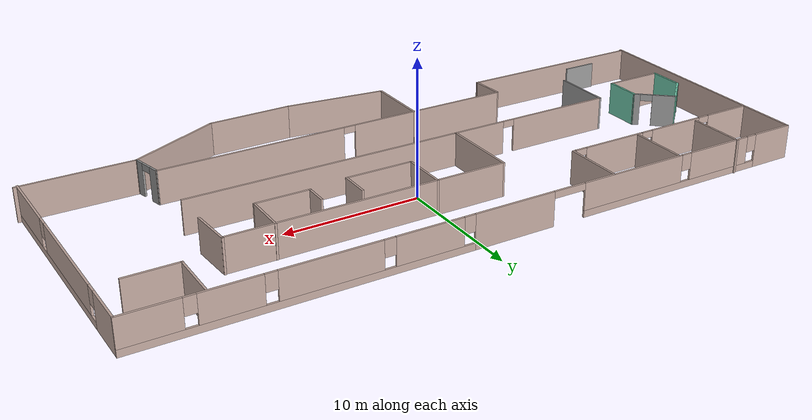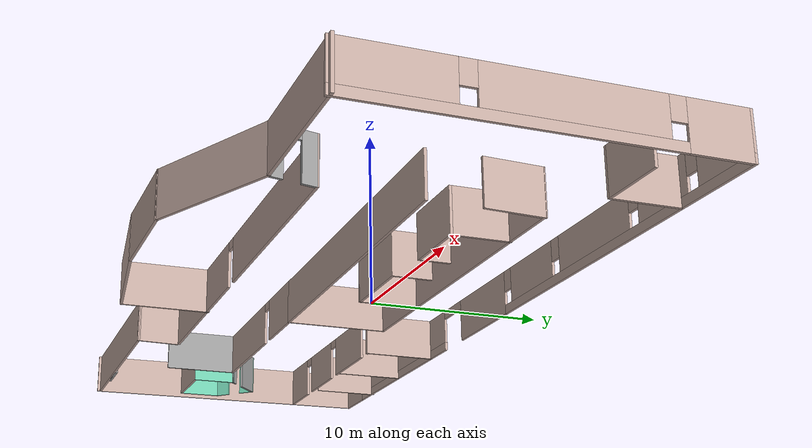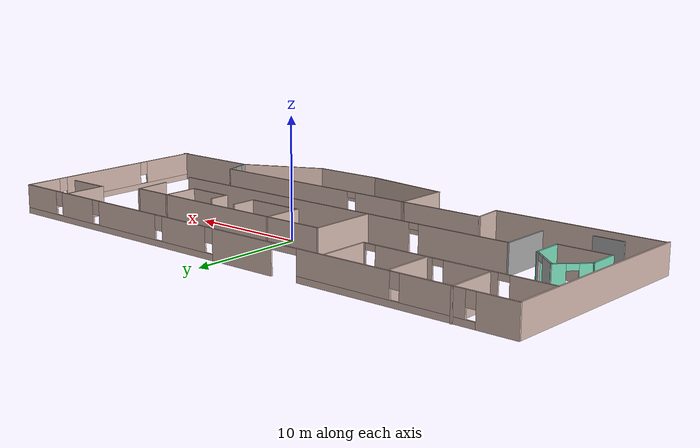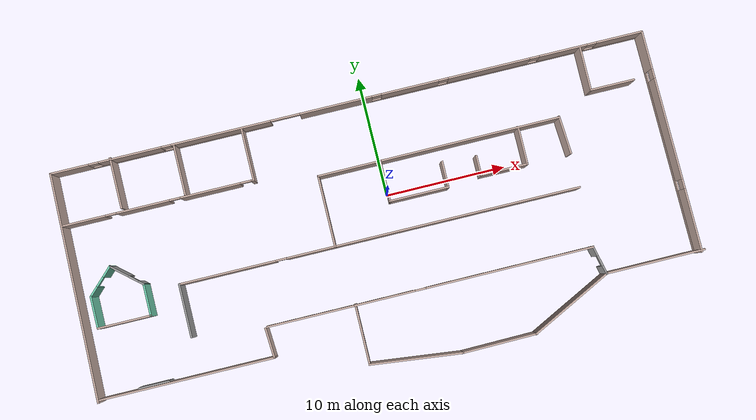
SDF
<?xml version='1.0'?>
<sdf version='1.6'>
  <model name='officesim'>
    <pose frame=''>-1.31506 -2.93451 0 0 -0 0</pose>
    <link name='Door_8'>
      <collision name='Door_8_Collision'>
        <geometry>
          <box>
            <size>2.61208 0.2 2</size>
          </box>
        </geometry>
        <pose frame=''>0 0 1 0 -0 0</pose>
      </collision>
      <visual name='Door_8_Visual'>
        <pose frame=''>0 0 1 0 -0 0</pose>
        <geometry>
          <box>
            <size>2.61208 0.2 2</size>
          </box>
        </geometry>
        <material>
          <script>
            <uri>file://media/materials/scripts/gazebo.material</uri>
            <name>Gazebo/Grey</name>
          </script>
        </material>
      </visual>
      <pose frame=''>-20.5074 -7.65643 0 0 -0 0</pose>
    </link>
    <link name='Wall_0'>
      <pose frame=''>-0.078667 10.8725 0 0 -0 0</pose>
      <visual name='Wall_0_Visual_0'>
        <pose frame=''>-23.1341 0 1.25 0 -0 0</pose>
        <geometry>
          <box>
            <size>3.23173 0.15 2.5</size>
          </box>
        </geometry>
        <material>
          <script>
            <uri>file://media/materials/scripts/gazebo.material</uri>
            <name>Gazebo/Grey</name>
          </script>
          <ambient>0.760784 0.662745 0.627451 1</ambient>
        </material>
      </visual>
      <collision name='Wall_0_Collision_0'>
        <geometry>
          <box>
            <size>3.23173 0.15 2.5</size>
          </box>
        </geometry>
        <pose frame=''>-23.1341 0 1.25 0 -0 0</pose>
      </collision>
      <visual name='Wall_0_Visual_1'>
        <pose frame=''>-0.958275 0 1.25 0 -0 0</pose>
        <geometry>
          <box>
            <size>6.01036 0.15 2.5</size>
          </box>
        </geometry>
        <material>
          <script>
            <uri>file://media/materials/scripts/gazebo.material</uri>
            <name>Gazebo/Grey</name>
          </script>
          <ambient>0.760784 0.662745 0.627451 1</ambient>
        </material>
      </visual>
      <collision name='Wall_0_Collision_1'>
        <geometry>
          <box>
            <size>6.01036 0.15 2.5</size>
          </box>
        </geometry>
        <pose frame=''>-0.958275 0 1.25 0 -0 0</pose>
      </collision>
      <visual name='Wall_0_Visual_2'>
        <pose frame=''>-13.96 0 0.25 0 -0 0</pose>
        <geometry>
          <box>
            <size>15.1166 0.15 0.5</size>
          </box>
        </geometry>
        <material>
          <script>
            <uri>file://media/materials/scripts/gazebo.material</uri>
            <name>Gazebo/Grey</name>
          </script>
          <ambient>0.760784 0.662745 0.627451 1</ambient>
        </material>
      </visual>
      <collision name='Wall_0_Collision_2'>
        <geometry>
          <box>
            <size>15.1166 0.15 0.5</size>
          </box>
        </geometry>
        <pose frame=''>-13.96 0 0.25 0 -0 0</pose>
      </collision>
      <visual name='Wall_0_Visual_3'>
        <pose frame=''>13.3985 0 0.25 0 -0 0</pose>
        <geometry>
          <box>
            <size>22.7031 0.15 0.5</size>
          </box>
        </geometry>
        <material>
          <script>
            <uri>file://media/materials/scripts/gazebo.material</uri>
            <name>Gazebo/Grey</name>
          </script>
          <ambient>0.760784 0.662745 0.627451 1</ambient>
        </material>
      </visual>
      <collision name='Wall_0_Collision_3'>
        <geometry>
          <box>
            <size>22.7031 0.15 0.5</size>
          </box>
        </geometry>
        <pose frame=''>13.3985 0 0.25 0 -0 0</pose>
      </collision>
      <visual name='Wall_0_Visual_4'>
        <pose frame=''>-18.1034 0 1.5 0 -0 0</pose>
        <geometry>
          <box>
            <size>5.22973 0.15 2</size>
          </box>
        </geometry>
        <material>
          <script>
            <uri>file://media/materials/scripts/gazebo.material</uri>
            <name>Gazebo/Grey</name>
          </script>
          <ambient>0.760784 0.662745 0.627451 1</ambient>
        </material>
      </visual>
      <collision name='Wall_0_Collision_4'>
        <geometry>
          <box>
            <size>5.22973 0.15 2</size>
          </box>
        </geometry>
        <pose frame=''>-18.1034 0 1.5 0 -0 0</pose>
      </collision>
      <visual name='Wall_0_Visual_5'>
        <pose frame=''>-10.5451 0 1.5 0 -0 0</pose>
        <geometry>
          <box>
            <size>8.28689 0.15 2</size>
          </box>
        </geometry>
        <material>
          <script>
            <uri>file://media/materials/scripts/gazebo.material</uri>
            <name>Gazebo/Grey</name>
          </script>
          <ambient>0.760784 0.662745 0.627451 1</ambient>
        </material>
      </visual>
      <collision name='Wall_0_Collision_5'>
        <geometry>
          <box>
            <size>8.28689 0.15 2</size>
          </box>
        </geometry>
        <pose frame=''>-10.5451 0 1.5 0 -0 0</pose>
      </collision>
      <visual name='Wall_0_Visual_6'>
        <pose frame=''>-10.5451 0 1.5 0 -0 0</pose>
        <geometry>
          <box>
            <size>8.28689 0.15 2</size>
          </box>
        </geometry>
        <material>
          <script>
            <uri>file://media/materials/scripts/gazebo.material</uri>
            <name>Gazebo/Grey</name>
          </script>
          <ambient>0.760784 0.662745 0.627451 1</ambient>
        </material>
      </visual>
      <collision name='Wall_0_Collision_6'>
        <geometry>
          <box>
            <size>8.28689 0.15 2</size>
          </box>
        </geometry>
        <pose frame=''>-10.5451 0 1.5 0 -0 0</pose>
      </collision>
      <visual name='Wall_0_Visual_7'>
        <pose frame=''>5.24642 0 1.5 0 -0 0</pose>
        <geometry>
          <box>
            <size>4.79904 0.15 2</size>
          </box>
        </geometry>
        <material>
          <script>
            <uri>file://media/materials/scripts/gazebo.material</uri>
            <name>Gazebo/Grey</name>
          </script>
          <ambient>0.760784 0.662745 0.627451 1</ambient>
        </material>
      </visual>
      <collision name='Wall_0_Collision_7'>
        <geometry>
          <box>
            <size>4.79904 0.15 2</size>
          </box>
        </geometry>
        <pose frame=''>5.24642 0 1.5 0 -0 0</pose>
      </collision>
      <visual name='Wall_0_Visual_8'>
        <pose frame=''>11.8607 0 1.5 0 -0 0</pose>
        <geometry>
          <box>
            <size>6.82946 0.15 2</size>
          </box>
        </geometry>
        <material>
          <script>
            <uri>file://media/materials/scripts/gazebo.material</uri>
            <name>Gazebo/Grey</name>
          </script>
          <ambient>0.760784 0.662745 0.627451 1</ambient>
        </material>
      </visual>
      <collision name='Wall_0_Collision_8'>
        <geometry>
          <box>
            <size>6.82946 0.15 2</size>
          </box>
        </geometry>
        <pose frame=''>11.8607 0 1.5 0 -0 0</pose>
      </collision>
      <visual name='Wall_0_Visual_9'>
        <pose frame=''>18.075 0 1.5 0 -0 0</pose>
        <geometry>
          <box>
            <size>3.99918 0.15 2</size>
          </box>
        </geometry>
        <material>
          <script>
            <uri>file://media/materials/scripts/gazebo.material</uri>
            <name>Gazebo/Grey</name>
          </script>
          <ambient>0.760784 0.662745 0.627451 1</ambient>
        </material>
      </visual>
      <collision name='Wall_0_Collision_9'>
        <geometry>
          <box>
            <size>3.99918 0.15 2</size>
          </box>
        </geometry>
        <pose frame=''>18.075 0 1.5 0 -0 0</pose>
      </collision>
      <visual name='Wall_0_Visual_10'>
        <pose frame=''>22.8123 0 1.5 0 -0 0</pose>
        <geometry>
          <box>
            <size>3.87543 0.15 2</size>
          </box>
        </geometry>
        <material>
          <script>
            <uri>file://media/materials/scripts/gazebo.material</uri>
            <name>Gazebo/Grey</name>
          </script>
          <ambient>0.760784 0.662745 0.627451 1</ambient>
        </material>
      </visual>
      <collision name='Wall_0_Collision_10'>
        <geometry>
          <box>
            <size>3.87543 0.15 2</size>
          </box>
        </geometry>
        <pose frame=''>22.8123 0 1.5 0 -0 0</pose>
      </collision>
      <visual name='Wall_0_Visual_11'>
        <pose frame=''>-21.1183 0 1.9 0 -0 0</pose>
        <geometry>
          <box>
            <size>0.8 0.15 1.2</size>
          </box>
        </geometry>
        <material>
          <script>
            <uri>file://media/materials/scripts/gazebo.material</uri>
            <name>Gazebo/Grey</name>
          </script>
          <ambient>0.760784 0.662745 0.627451 1</ambient>
        </material>
      </visual>
      <collision name='Wall_0_Collision_11'>
        <geometry>
          <box>
            <size>0.8 0.15 1.2</size>
          </box>
        </geometry>
        <pose frame=''>-21.1183 0 1.9 0 -0 0</pose>
      </collision>
      <visual name='Wall_0_Visual_12'>
        <pose frame=''>2.44691 0 1.9 0 -0 0</pose>
        <geometry>
          <box>
            <size>0.8 0.15 1.2</size>
          </box>
        </geometry>
        <material>
          <script>
            <uri>file://media/materials/scripts/gazebo.material</uri>
            <name>Gazebo/Grey</name>
          </script>
          <ambient>0.760784 0.662745 0.627451 1</ambient>
        </material>
      </visual>
      <collision name='Wall_0_Collision_12'>
        <geometry>
          <box>
            <size>0.8 0.15 1.2</size>
          </box>
        </geometry>
        <pose frame=''>2.44691 0 1.9 0 -0 0</pose>
      </collision>
      <visual name='Wall_0_Visual_13'>
        <pose frame=''>-15.0885 0 1.9 0 -0 0</pose>
        <geometry>
          <box>
            <size>0.8 0.15 1.2</size>
          </box>
        </geometry>
        <material>
          <script>
            <uri>file://media/materials/scripts/gazebo.material</uri>
            <name>Gazebo/Grey</name>
          </script>
          <ambient>0.760784 0.662745 0.627451 1</ambient>
        </material>
      </visual>
      <collision name='Wall_0_Collision_13'>
        <geometry>
          <box>
            <size>0.8 0.15 1.2</size>
          </box>
        </geometry>
        <pose frame=''>-15.0885 0 1.9 0 -0 0</pose>
      </collision>
      <visual name='Wall_0_Visual_14'>
        <pose frame=''>8.04594 0 1.9 0 -0 0</pose>
        <geometry>
          <box>
            <size>0.8 0.15 1.2</size>
          </box>
        </geometry>
        <material>
          <script>
            <uri>file://media/materials/scripts/gazebo.material</uri>
            <name>Gazebo/Grey</name>
          </script>
          <ambient>0.760784 0.662745 0.627451 1</ambient>
        </material>
      </visual>
      <collision name='Wall_0_Collision_14'>
        <geometry>
          <box>
            <size>0.8 0.15 1.2</size>
          </box>
        </geometry>
        <pose frame=''>8.04594 0 1.9 0 -0 0</pose>
      </collision>
      <visual name='Wall_0_Visual_15'>
        <pose frame=''>15.6754 0 1.9 0 -0 0</pose>
        <geometry>
          <box>
            <size>0.8 0.15 1.2</size>
          </box>
        </geometry>
        <material>
          <script>
            <uri>file://media/materials/scripts/gazebo.material</uri>
            <name>Gazebo/Grey</name>
          </script>
          <ambient>0.760784 0.662745 0.627451 1</ambient>
        </material>
      </visual>
      <collision name='Wall_0_Collision_15'>
        <geometry>
          <box>
            <size>0.8 0.15 1.2</size>
          </box>
        </geometry>
        <pose frame=''>15.6754 0 1.9 0 -0 0</pose>
      </collision>
      <visual name='Wall_0_Visual_16'>
        <pose frame=''>20.4746 0 1.9 0 -0 0</pose>
        <geometry>
          <box>
            <size>0.8 0.15 1.2</size>
          </box>
        </geometry>
        <material>
          <script>
            <uri>file://media/materials/scripts/gazebo.material</uri>
            <name>Gazebo/Grey</name>
          </script>
          <ambient>0.760784 0.662745 0.627451 1</ambient>
        </material>
      </visual>
      <collision name='Wall_0_Collision_16'>
        <geometry>
          <box>
            <size>0.8 0.15 1.2</size>
          </box>
        </geometry>
        <pose frame=''>20.4746 0 1.9 0 -0 0</pose>
      </collision>
      <visual name='Wall_0_Visual_17'>
        <pose frame=''>-5.18255 0 2.25 0 -0 0</pose>
        <geometry>
          <box>
            <size>2.4382 0.15 0.5</size>
          </box>
        </geometry>
        <material>
          <script>
            <uri>file://media/materials/scripts/gazebo.material</uri>
            <name>Gazebo/Grey</name>
          </script>
          <ambient>0.760784 0.662745 0.627451 1</ambient>
        </material>
      </visual>
      <collision name='Wall_0_Collision_17'>
        <geometry>
          <box>
            <size>2.4382 0.15 0.5</size>
          </box>
        </geometry>
        <pose frame=''>-5.18255 0 2.25 0 -0 0</pose>
      </collision>
      <visual name='Wall_0_Visual_18'>
        <pose frame=''>-5.18255 0 2.25 0 -0 0</pose>
        <geometry>
          <box>
            <size>2.4382 0.15 0.5</size>
          </box>
        </geometry>
        <material>
          <script>
            <uri>file://media/materials/scripts/gazebo.material</uri>
            <name>Gazebo/Grey</name>
          </script>
          <ambient>0.760784 0.662745 0.627451 1</ambient>
        </material>
      </visual>
      <collision name='Wall_0_Collision_18'>
        <geometry>
          <box>
            <size>2.4382 0.15 0.5</size>
          </box>
        </geometry>
        <pose frame=''>-5.18255 0 2.25 0 -0 0</pose>
      </collision>
    </link>
    <link name='Wall_1'>
      <pose frame=''>24.7194 1.60331 0 0 0 -1.55743</pose>
      <visual name='Wall_1_Visual_0'>
        <pose frame=''>-7.70288 0 1.25 0 -0 0</pose>
        <geometry>
          <box>
            <size>3.16131 0.15 2.5</size>
          </box>
        </geometry>
        <material>
          <script>
            <uri>file://media/materials/scripts/gazebo.material</uri>
            <name>Gazebo/Grey</name>
          </script>
          <ambient>0.760784 0.662745 0.627451 1</ambient>
        </material>
      </visual>
      <collision name='Wall_1_Collision_0'>
        <geometry>
          <box>
            <size>3.16131 0.15 2.5</size>
          </box>
        </geometry>
        <pose frame=''>-7.70288 0 1.25 0 -0 0</pose>
      </collision>
      <visual name='Wall_1_Visual_1'>
        <pose frame=''>1.58065 0 0.25 0 -0 0</pose>
        <geometry>
          <box>
            <size>15.4058 0.15 0.5</size>
          </box>
        </geometry>
        <material>
          <script>
            <uri>file://media/materials/scripts/gazebo.material</uri>
            <name>Gazebo/Grey</name>
          </script>
          <ambient>0.760784 0.662745 0.627451 1</ambient>
        </material>
      </visual>
      <collision name='Wall_1_Collision_1'>
        <geometry>
          <box>
            <size>15.4058 0.15 0.5</size>
          </box>
        </geometry>
        <pose frame=''>1.58065 0 0.25 0 -0 0</pose>
      </collision>
      <visual name='Wall_1_Visual_2'>
        <pose frame=''>-1.07769 0 1.5 0 -0 0</pose>
        <geometry>
          <box>
            <size>8.48906 0.15 2</size>
          </box>
        </geometry>
        <material>
          <script>
            <uri>file://media/materials/scripts/gazebo.material</uri>
            <name>Gazebo/Grey</name>
          </script>
          <ambient>0.760784 0.662745 0.627451 1</ambient>
        </material>
      </visual>
      <collision name='Wall_1_Collision_2'>
        <geometry>
          <box>
            <size>8.48906 0.15 2</size>
          </box>
        </geometry>
        <pose frame=''>-1.07769 0 1.5 0 -0 0</pose>
      </collision>
      <visual name='Wall_1_Visual_3'>
        <pose frame=''>6.62518 0 1.5 0 -0 0</pose>
        <geometry>
          <box>
            <size>5.31669 0.15 2</size>
          </box>
        </geometry>
        <material>
          <script>
            <uri>file://media/materials/scripts/gazebo.material</uri>
            <name>Gazebo/Grey</name>
          </script>
          <ambient>0.760784 0.662745 0.627451 1</ambient>
        </material>
      </visual>
      <collision name='Wall_1_Collision_3'>
        <geometry>
          <box>
            <size>5.31669 0.15 2</size>
          </box>
        </geometry>
        <pose frame=''>6.62518 0 1.5 0 -0 0</pose>
      </collision>
      <visual name='Wall_1_Visual_4'>
        <pose frame=''>-5.72222 0 1.9 0 -0 0</pose>
        <geometry>
          <box>
            <size>0.8 0.15 1.2</size>
          </box>
        </geometry>
        <material>
          <script>
            <uri>file://media/materials/scripts/gazebo.material</uri>
            <name>Gazebo/Grey</name>
          </script>
          <ambient>0.760784 0.662745 0.627451 1</ambient>
        </material>
      </visual>
      <collision name='Wall_1_Collision_4'>
        <geometry>
          <box>
            <size>0.8 0.15 1.2</size>
          </box>
        </geometry>
        <pose frame=''>-5.72222 0 1.9 0 -0 0</pose>
      </collision>
      <visual name='Wall_1_Visual_5'>
        <pose frame=''>3.56684 0 1.9 0 -0 0</pose>
        <geometry>
          <box>
            <size>0.8 0.15 1.2</size>
          </box>
        </geometry>
        <material>
          <script>
            <uri>file://media/materials/scripts/gazebo.material</uri>
            <name>Gazebo/Grey</name>
          </script>
          <ambient>0.760784 0.662745 0.627451 1</ambient>
        </material>
      </visual>
      <collision name='Wall_1_Collision_5'>
        <geometry>
          <box>
            <size>0.8 0.15 1.2</size>
          </box>
        </geometry>
        <pose frame=''>3.56684 0 1.9 0 -0 0</pose>
      </collision>
    </link>
    <link name='Wall_14'>
      <collision name='Wall_14_Collision'>
        <geometry>
          <box>
            <size>6.27117 0.15 2.5</size>
          </box>
        </geometry>
        <pose frame=''>0 0 1.25 0 -0 0</pose>
      </collision>
      <visual name='Wall_14_Visual'>
        <pose frame=''>0 0 1.25 0 -0 0</pose>
        <geometry>
          <box>
            <size>6.27117 0.15 2.5</size>
          </box>
        </geometry>
        <material>
          <script>
            <uri>file://media/materials/scripts/gazebo.material</uri>
            <name>Gazebo/Grey</name>
          </script>
          <ambient>0.760784 0.662745 0.627451 1</ambient>
        </material>
      </visual>
      <pose frame=''>7.25272 -10.9104 0 0 0 -3.12722</pose>
    </link>
    <link name='Wall_15'>
      <collision name='Wall_15_Collision'>
        <geometry>
          <box>
            <size>7.67434 0.15 2.5</size>
          </box>
        </geometry>
        <pose frame=''>0 0 1.25 0 -0 0</pose>
      </collision>
      <visual name='Wall_15_Visual'>
        <pose frame=''>0 0 1.25 0 -0 0</pose>
        <geometry>
          <box>
            <size>7.67434 0.15 2.5</size>
          </box>
        </geometry>
        <material>
          <script>
            <uri>file://media/materials/scripts/gazebo.material</uri>
            <name>Gazebo/Grey</name>
          </script>
          <ambient>0.760784 0.662745 0.627451 1</ambient>
        </material>
      </visual>
      <pose frame=''>0.454703 -10.5264 0 0 -0 3.02758</pose>
    </link>
    <link name='Wall_16'>
      <collision name='Wall_16_Collision'>
        <geometry>
          <box>
            <size>5 0.15 2.5</size>
          </box>
        </geometry>
        <pose frame=''>0 0 1.25 0 -0 0</pose>
      </collision>
      <visual name='Wall_16_Visual'>
        <pose frame=''>0 0 1.25 0 -0 0</pose>
        <geometry>
          <box>
            <size>5 0.15 2.5</size>
          </box>
        </geometry>
        <material>
          <script>
            <uri>file://media/materials/scripts/gazebo.material</uri>
            <name>Gazebo/Grey</name>
          </script>
          <ambient>0.760784 0.662745 0.627451 1</ambient>
        </material>
      </visual>
      <pose frame=''>-3.28304 -7.61986 0 0 -0 1.5708</pose>
    </link>
    <link name='Wall_17'>
      <collision name='Wall_17_Collision'>
        <geometry>
          <box>
            <size>0.15 0.15 2.5</size>
          </box>
        </geometry>
        <pose frame=''>0 0 1.25 0 -0 0</pose>
      </collision>
      <visual name='Wall_17_Visual'>
        <pose frame=''>0 0 1.25 0 -0 0</pose>
        <geometry>
          <box>
            <size>0.15 0.15 2.5</size>
          </box>
        </geometry>
        <material>
          <script>
            <uri>file://media/materials/scripts/gazebo.material</uri>
            <name>Gazebo/Grey</name>
          </script>
          <ambient>1 1 1 1</ambient>
        </material>
      </visual>
      <pose frame=''>-3.28304 -5.24836 0 0 -0 0</pose>
    </link>
    <link name='Wall_19'>
      <collision name='Wall_19_Collision'>
        <geometry>
          <box>
            <size>7.63209 0.15 2.5</size>
          </box>
        </geometry>
        <pose frame=''>0 0 1.25 0 -0 0</pose>
      </collision>
      <visual name='Wall_19_Visual'>
        <pose frame=''>0 0 1.25 0 -0 0</pose>
        <geometry>
          <box>
            <size>7.63209 0.15 2.5</size>
          </box>
        </geometry>
        <material>
          <script>
            <uri>file://media/materials/scripts/gazebo.material</uri>
            <name>Gazebo/Grey</name>
          </script>
          <ambient>0.760784 0.662745 0.627451 1</ambient>
        </material>
      </visual>
      <pose frame=''>13.6569 -9.18898 0 0 -0 0.464953</pose>
    </link>
    <link name='Wall_20'>
      <collision name='Wall_20_Collision'>
        <geometry>
          <box>
            <size>8.2824 0.15 2.5</size>
          </box>
        </geometry>
        <pose frame=''>0 0 1.25 0 -0 0</pose>
      </collision>
      <visual name='Wall_20_Visual'>
        <pose frame=''>0 0 1.25 0 -0 0</pose>
        <geometry>
          <box>
            <size>8.2824 0.15 2.5</size>
          </box>
        </geometry>
        <material>
          <script>
            <uri>file://media/materials/scripts/gazebo.material</uri>
            <name>Gazebo/Grey</name>
          </script>
          <ambient>0.760784 0.662745 0.627451 1</ambient>
        </material>
      </visual>
      <pose frame=''>21.0135 -7.50165 0 0 -0 0.002439</pose>
    </link>
    <link name='Wall_24'>
      <collision name='Wall_24_Collision'>
        <geometry>
          <box>
            <size>4.5 0.15 2.5</size>
          </box>
        </geometry>
        <pose frame=''>0 0 1.25 0 -0 0</pose>
      </collision>
      <visual name='Wall_24_Visual'>
        <pose frame=''>0 0 1.25 0 -0 0</pose>
        <geometry>
          <box>
            <size>4.5 0.15 2.5</size>
          </box>
        </geometry>
        <material>
          <script>
            <uri>file://media/materials/scripts/gazebo.material</uri>
            <name>Gazebo/Grey</name>
          </script>
          <ambient>1 1 1 1</ambient>
        </material>
      </visual>
      <pose frame=''>-16.6523 -2.4316 0 0 -0 1.5708</pose>
    </link>
    <link name='Wall_25'>
      <pose frame=''>-10.2093 -0.256602 0 0 -0 0</pose>
      <visual name='Wall_25_Visual_0'>
        <pose frame=''>-2.49362 0 1.25 0 -0 0</pose>
        <geometry>
          <box>
            <size>8.04875 0.15 2.5</size>
          </box>
        </geometry>
        <material>
          <script>
            <uri>file://media/materials/scripts/gazebo.material</uri>
            <name>Gazebo/Grey</name>
          </script>
          <ambient>0.760784 0.662745 0.627451 1</ambient>
        </material>
      </visual>
      <collision name='Wall_25_Collision_0'>
        <geometry>
          <box>
            <size>8.04875 0.15 2.5</size>
          </box>
        </geometry>
        <pose frame=''>-2.49362 0 1.25 0 -0 0</pose>
      </collision>
      <visual name='Wall_25_Visual_1'>
        <pose frame=''>4.47437 0 1.25 0 -0 0</pose>
        <geometry>
          <box>
            <size>4.08725 0.15 2.5</size>
          </box>
        </geometry>
        <material>
          <script>
            <uri>file://media/materials/scripts/gazebo.material</uri>
            <name>Gazebo/Grey</name>
          </script>
          <ambient>0.760784 0.662745 0.627451 1</ambient>
        </material>
      </visual>
      <collision name='Wall_25_Collision_1'>
        <geometry>
          <box>
            <size>4.08725 0.15 2.5</size>
          </box>
        </geometry>
        <pose frame=''>4.47437 0 1.25 0 -0 0</pose>
      </collision>
      <visual name='Wall_25_Visual_2'>
        <pose frame=''>1.98075 0 2.25 0 -0 0</pose>
        <geometry>
          <box>
            <size>0.9 0.15 0.5</size>
          </box>
        </geometry>
        <material>
          <script>
            <uri>file://media/materials/scripts/gazebo.material</uri>
            <name>Gazebo/Grey</name>
          </script>
          <ambient>0.760784 0.662745 0.627451 1</ambient>
        </material>
      </visual>
      <collision name='Wall_25_Collision_2'>
        <geometry>
          <box>
            <size>0.9 0.15 0.5</size>
          </box>
        </geometry>
        <pose frame=''>1.98075 0 2.25 0 -0 0</pose>
      </collision>
    </link>
    <link name='Wall_26'>
      <collision name='Wall_26_Collision'>
        <geometry>
          <box>
            <size>6 0.15 2.5</size>
          </box>
        </geometry>
        <pose frame=''>0 0 1.25 0 -0 0</pose>
      </collision>
      <visual name='Wall_26_Visual'>
        <pose frame=''>0 0 1.25 0 -0 0</pose>
        <geometry>
          <box>
            <size>6 0.15 2.5</size>
          </box>
        </geometry>
        <material>
          <script>
            <uri>file://media/materials/scripts/gazebo.material</uri>
            <name>Gazebo/Grey</name>
          </script>
          <ambient>0.760784 0.662745 0.627451 1</ambient>
        </material>
      </visual>
      <pose frame=''>-3.76628 2.6684 0 0 -0 1.5708</pose>
    </link>
    <link name='Wall_27'>
      <collision name='Wall_27_Collision'>
        <geometry>
          <box>
            <size>20.1971 0.15 2.5</size>
          </box>
        </geometry>
        <pose frame=''>0 0 1.25 0 -0 0</pose>
      </collision>
      <visual name='Wall_27_Visual'>
        <pose frame=''>0 0 1.25 0 -0 0</pose>
        <geometry>
          <box>
            <size>20.1971 0.15 2.5</size>
          </box>
        </geometry>
        <material>
          <script>
            <uri>file://media/materials/scripts/gazebo.material</uri>
            <name>Gazebo/Grey</name>
          </script>
          <ambient>0.760784 0.662745 0.627451 1</ambient>
        </material>
      </visual>
      <pose frame=''>6.31047 5.62015 0 0 -0 0.002669</pose>
    </link>
    <link name='Wall_28'>
      <collision name='Wall_28_Collision'>
        <geometry>
          <box>
            <size>3.25738 0.15 2.5</size>
          </box>
        </geometry>
        <pose frame=''>0 0 1.25 0 -0 0</pose>
      </collision>
      <visual name='Wall_28_Visual'>
        <pose frame=''>0 0 1.25 0 -0 0</pose>
        <geometry>
          <box>
            <size>3.25738 0.15 2.5</size>
          </box>
        </geometry>
        <material>
          <script>
            <uri>file://media/materials/scripts/gazebo.material</uri>
            <name>Gazebo/Grey</name>
          </script>
          <ambient>0.760784 0.662745 0.627451 1</ambient>
        </material>
      </visual>
      <pose frame=''>16.4407 4.1504 0 0 0 -1.50187</pose>
    </link>
    <link name='Wall_3'>
      <collision name='Wall_3_Collision'>
        <geometry>
          <box>
            <size>18.8892 0.15 2.5</size>
          </box>
        </geometry>
        <pose frame=''>0 0 1.25 0 -0 0</pose>
      </collision>
      <visual name='Wall_3_Visual'>
        <pose frame=''>0 0 1.25 0 -0 0</pose>
        <geometry>
          <box>
            <size>18.8892 0.15 2.5</size>
          </box>
        </geometry>
        <material>
          <script>
            <uri>file://media/materials/scripts/gazebo.material</uri>
            <name>Gazebo/Grey</name>
          </script>
          <ambient>0.760784 0.662745 0.627451 1</ambient>
        </material>
      </visual>
      <pose frame=''>-24.9161 1.4428 0 0 -0 1.55346</pose>
    </link>
    <link name='Wall_31'>
      <collision name='Wall_31_Collision'>
        <geometry>
          <box>
            <size>2.57633 0.15 2.5</size>
          </box>
        </geometry>
        <pose frame=''>0 0 1.25 0 -0 0</pose>
      </collision>
      <visual name='Wall_31_Visual'>
        <pose frame=''>0 0 1.25 0 -0 0</pose>
        <geometry>
          <box>
            <size>2.57633 0.15 2.5</size>
          </box>
        </geometry>
        <material>
          <script>
            <uri>file://media/materials/scripts/gazebo.material</uri>
            <name>Gazebo/Grey</name>
          </script>
          <ambient>0.760784 0.662745 0.627451 1</ambient>
        </material>
      </visual>
      <pose frame=''>-10.6483 -6.5544 0 0 -0 1.637</pose>
    </link>
    <link name='Wall_34'>
      <collision name='Wall_34_Collision'>
        <geometry>
          <box>
            <size>7.25 0.15 2.5</size>
          </box>
        </geometry>
        <pose frame=''>0 0 1.25 0 -0 0</pose>
      </collision>
      <visual name='Wall_34_Visual'>
        <pose frame=''>0 0 1.25 0 -0 0</pose>
        <geometry>
          <box>
            <size>7.25 0.15 2.5</size>
          </box>
        </geometry>
        <material>
          <script>
            <uri>file://media/materials/scripts/gazebo.material</uri>
            <name>Gazebo/Grey</name>
          </script>
          <ambient>0.760784 0.662745 0.627451 1</ambient>
        </material>
      </visual>
      <pose frame=''>-7.01681 -5.24881 0 0 -0 3.14159</pose>
    </link>
    <link name='Wall_36'>
      <pose frame=''>6.47619 -5.22206 0 0 -0 0.00269</pose>
      <visual name='Wall_36_Visual_0'>
        <pose frame=''>-7.42655 0 1.25 0 -0 0</pose>
        <geometry>
          <box>
            <size>5.18297 0.15 2.5</size>
          </box>
        </geometry>
        <material>
          <script>
            <uri>file://media/materials/scripts/gazebo.material</uri>
            <name>Gazebo/Grey</name>
          </script>
          <ambient>0.760784 0.662745 0.627451 1</ambient>
        </material>
      </visual>
      <collision name='Wall_36_Collision_0'>
        <geometry>
          <box>
            <size>5.18297 0.15 2.5</size>
          </box>
        </geometry>
        <pose frame=''>-7.42655 0 1.25 0 -0 0</pose>
      </collision>
      <visual name='Wall_36_Visual_1'>
        <pose frame=''>3.04148 0 1.25 0 -0 0</pose>
        <geometry>
          <box>
            <size>13.9531 0.15 2.5</size>
          </box>
        </geometry>
        <material>
          <script>
            <uri>file://media/materials/scripts/gazebo.material</uri>
            <name>Gazebo/Grey</name>
          </script>
          <ambient>0.760784 0.662745 0.627451 1</ambient>
        </material>
      </visual>
      <collision name='Wall_36_Collision_1'>
        <geometry>
          <box>
            <size>13.9531 0.15 2.5</size>
          </box>
        </geometry>
        <pose frame=''>3.04148 0 1.25 0 -0 0</pose>
      </collision>
      <visual name='Wall_36_Visual_2'>
        <pose frame=''>-4.38506 0 2.25 0 -0 0</pose>
        <geometry>
          <box>
            <size>0.9 0.15 0.5</size>
          </box>
        </geometry>
        <material>
          <script>
            <uri>file://media/materials/scripts/gazebo.material</uri>
            <name>Gazebo/Grey</name>
          </script>
          <ambient>0.760784 0.662745 0.627451 1</ambient>
        </material>
      </visual>
      <collision name='Wall_36_Collision_2'>
        <geometry>
          <box>
            <size>0.9 0.15 0.5</size>
          </box>
        </geometry>
        <pose frame=''>-4.38506 0 2.25 0 -0 0</pose>
      </collision>
    </link>
    <link name='Wall_39'>
      <pose frame=''>-16.8358 6.52173 0 0 -0 0</pose>
      <visual name='Wall_39_Visual_0'>
        <pose frame=''>-6.18116 0 1.25 0 -0 0</pose>
        <geometry>
          <box>
            <size>3.63769 0.15 2.5</size>
          </box>
        </geometry>
        <material>
          <script>
            <uri>file://media/materials/scripts/gazebo.material</uri>
            <name>Gazebo/Grey</name>
          </script>
          <ambient>0.760784 0.662745 0.627451 1</ambient>
        </material>
      </visual>
      <collision name='Wall_39_Collision_0'>
        <geometry>
          <box>
            <size>3.63769 0.15 2.5</size>
          </box>
        </geometry>
        <pose frame=''>-6.18116 0 1.25 0 -0 0</pose>
      </collision>
      <visual name='Wall_39_Visual_1'>
        <pose frame=''>-1.26394 0 1.25 0 -0 0</pose>
        <geometry>
          <box>
            <size>4.39675 0.15 2.5</size>
          </box>
        </geometry>
        <material>
          <script>
            <uri>file://media/materials/scripts/gazebo.material</uri>
            <name>Gazebo/Grey</name>
          </script>
          <ambient>0.760784 0.662745 0.627451 1</ambient>
        </material>
      </visual>
      <collision name='Wall_39_Collision_1'>
        <geometry>
          <box>
            <size>4.39675 0.15 2.5</size>
          </box>
        </geometry>
        <pose frame=''>-1.26394 0 1.25 0 -0 0</pose>
      </collision>
      <visual name='Wall_39_Visual_2'>
        <pose frame=''>4.32707 0 1.25 0 -0 0</pose>
        <geometry>
          <box>
            <size>4.98527 0.15 2.5</size>
          </box>
        </geometry>
        <material>
          <script>
            <uri>file://media/materials/scripts/gazebo.material</uri>
            <name>Gazebo/Grey</name>
          </script>
          <ambient>0.760784 0.662745 0.627451 1</ambient>
        </material>
      </visual>
      <collision name='Wall_39_Collision_2'>
        <geometry>
          <box>
            <size>4.98527 0.15 2.5</size>
          </box>
        </geometry>
        <pose frame=''>4.32707 0 1.25 0 -0 0</pose>
      </collision>
      <visual name='Wall_39_Visual_3'>
        <pose frame=''>7.85985 0 1.25 0 -0 0</pose>
        <geometry>
          <box>
            <size>0.280289 0.15 2.5</size>
          </box>
        </geometry>
        <material>
          <script>
            <uri>file://media/materials/scripts/gazebo.material</uri>
            <name>Gazebo/Grey</name>
          </script>
          <ambient>0.760784 0.662745 0.627451 1</ambient>
        </material>
      </visual>
      <collision name='Wall_39_Collision_3'>
        <geometry>
          <box>
            <size>0.280289 0.15 2.5</size>
          </box>
        </geometry>
        <pose frame=''>7.85985 0 1.25 0 -0 0</pose>
      </collision>
      <visual name='Wall_39_Visual_4'>
        <pose frame=''>-3.91231 0 2.25 0 -0 0</pose>
        <geometry>
          <box>
            <size>0.9 0.15 0.5</size>
          </box>
        </geometry>
        <material>
          <script>
            <uri>file://media/materials/scripts/gazebo.material</uri>
            <name>Gazebo/Grey</name>
          </script>
          <ambient>0.760784 0.662745 0.627451 1</ambient>
        </material>
      </visual>
      <collision name='Wall_39_Collision_4'>
        <geometry>
          <box>
            <size>0.9 0.15 0.5</size>
          </box>
        </geometry>
        <pose frame=''>-3.91231 0 2.25 0 -0 0</pose>
      </collision>
      <visual name='Wall_39_Visual_5'>
        <pose frame=''>1.38444 0 2.25 0 -0 0</pose>
        <geometry>
          <box>
            <size>0.9 0.15 0.5</size>
          </box>
        </geometry>
        <material>
          <script>
            <uri>file://media/materials/scripts/gazebo.material</uri>
            <name>Gazebo/Grey</name>
          </script>
          <ambient>0.760784 0.662745 0.627451 1</ambient>
        </material>
      </visual>
      <collision name='Wall_39_Collision_5'>
        <geometry>
          <box>
            <size>0.9 0.15 0.5</size>
          </box>
        </geometry>
        <pose frame=''>1.38444 0 2.25 0 -0 0</pose>
      </collision>
      <visual name='Wall_39_Visual_6'>
        <pose frame=''>7.26971 0 2.25 0 -0 0</pose>
        <geometry>
          <box>
            <size>0.9 0.15 0.5</size>
          </box>
        </geometry>
        <material>
          <script>
            <uri>file://media/materials/scripts/gazebo.material</uri>
            <name>Gazebo/Grey</name>
          </script>
          <ambient>0.760784 0.662745 0.627451 1</ambient>
        </material>
      </visual>
      <collision name='Wall_39_Collision_6'>
        <geometry>
          <box>
            <size>0.9 0.15 0.5</size>
          </box>
        </geometry>
        <pose frame=''>7.26971 0 2.25 0 -0 0</pose>
      </collision>
    </link>
    <link name='Wall_40'>
      <collision name='Wall_40_Collision'>
        <geometry>
          <box>
            <size>4.5 0.15 2.5</size>
          </box>
        </geometry>
        <pose frame=''>0 0 1.25 0 -0 0</pose>
      </collision>
      <visual name='Wall_40_Visual'>
        <pose frame=''>0 0 1.25 0 -0 0</pose>
        <geometry>
          <box>
            <size>4.5 0.15 2.5</size>
          </box>
        </geometry>
        <material>
          <script>
            <uri>file://media/materials/scripts/gazebo.material</uri>
            <name>Gazebo/Grey</name>
          </script>
          <ambient>0.760784 0.662745 0.627451 1</ambient>
        </material>
      </visual>
      <pose frame=''>-8.9108 8.69674 0 0 -0 1.5708</pose>
    </link>
    <link name='Wall_42'>
      <collision name='Wall_42_Collision'>
        <geometry>
          <box>
            <size>4.25 0.15 2.5</size>
          </box>
        </geometry>
        <pose frame=''>0 0 1.25 0 -0 0</pose>
      </collision>
      <visual name='Wall_42_Visual'>
        <pose frame=''>0 0 1.25 0 -0 0</pose>
        <geometry>
          <box>
            <size>4.25 0.15 2.5</size>
          </box>
        </geometry>
        <material>
          <script>
            <uri>file://media/materials/scripts/gazebo.material</uri>
            <name>Gazebo/Grey</name>
          </script>
          <ambient>0.760784 0.662745 0.627451 1</ambient>
        </material>
      </visual>
      <pose frame=''>-14.5418 8.75193 0 0 0 -1.5708</pose>
    </link>
    <link name='Wall_44'>
      <collision name='Wall_44_Collision'>
        <geometry>
          <box>
            <size>4.25 0.15 2.5</size>
          </box>
        </geometry>
        <pose frame=''>0 0 1.25 0 -0 0</pose>
      </collision>
      <visual name='Wall_44_Visual'>
        <pose frame=''>0 0 1.25 0 -0 0</pose>
        <geometry>
          <box>
            <size>4.25 0.15 2.5</size>
          </box>
        </geometry>
        <material>
          <script>
            <uri>file://media/materials/scripts/gazebo.material</uri>
            <name>Gazebo/Grey</name>
          </script>
          <ambient>0.760784 0.662745 0.627451 1</ambient>
        </material>
      </visual>
      <pose frame=''>-19.7851 8.91244 0 0 0 -1.5708</pose>
    </link>
    <link name='Wall_46'>
      <collision name='Wall_46_Collision'>
        <geometry>
          <box>
            <size>20.464 0.15 2.5</size>
          </box>
        </geometry>
        <pose frame=''>0 0 1.25 0 -0 0</pose>
      </collision>
      <visual name='Wall_46_Visual'>
        <pose frame=''>0 0 1.25 0 -0 0</pose>
        <geometry>
          <box>
            <size>20.464 0.15 2.5</size>
          </box>
        </geometry>
        <material>
          <script>
            <uri>file://media/materials/scripts/gazebo.material</uri>
            <name>Gazebo/Grey</name>
          </script>
          <ambient>0.760784 0.662745 0.627451 1</ambient>
        </material>
      </visual>
      <pose frame=''>6.39072 -0.256602 0 0 -0 0</pose>
    </link>
    <link name='Wall_48'>
      <collision name='Wall_48_Collision'>
        <geometry>
          <box>
            <size>3.5 0.15 2.5</size>
          </box>
        </geometry>
        <pose frame=''>0 0 1.25 0 -0 0</pose>
      </collision>
      <visual name='Wall_48_Visual'>
        <pose frame=''>0 0 1.25 0 -0 0</pose>
        <geometry>
          <box>
            <size>3.5 0.15 2.5</size>
          </box>
        </geometry>
        <material>
          <script>
            <uri>file://media/materials/scripts/gazebo.material</uri>
            <name>Gazebo/Grey</name>
          </script>
          <ambient>0.760784 0.662745 0.627451 1</ambient>
        </material>
      </visual>
      <pose frame=''>1.40192 3.93719 0 0 0 -1.5708</pose>
    </link>
    <link name='Wall_49'>
      <collision name='Wall_49_Collision'>
        <geometry>
          <box>
            <size>5 0.15 2.5</size>
          </box>
        </geometry>
        <pose frame=''>0 0 1.25 0 -0 0</pose>
      </collision>
      <visual name='Wall_49_Visual'>
        <pose frame=''>0 0 1.25 0 -0 0</pose>
        <geometry>
          <box>
            <size>5 0.15 2.5</size>
          </box>
        </geometry>
        <material>
          <script>
            <uri>file://media/materials/scripts/gazebo.material</uri>
            <name>Gazebo/Grey</name>
          </script>
          <ambient>0.760784 0.662745 0.627451 1</ambient>
        </material>
      </visual>
      <pose frame=''>3.82692 2.26219 0 0 -0 0</pose>
    </link>
    <link name='Wall_50'>
      <collision name='Wall_50_Collision'>
        <geometry>
          <box>
            <size>2.25 0.15 2.5</size>
          </box>
        </geometry>
        <pose frame=''>0 0 1.25 0 -0 0</pose>
      </collision>
      <visual name='Wall_50_Visual'>
        <pose frame=''>0 0 1.25 0 -0 0</pose>
        <geometry>
          <box>
            <size>2.25 0.15 2.5</size>
          </box>
        </geometry>
        <material>
          <script>
            <uri>file://media/materials/scripts/gazebo.material</uri>
            <name>Gazebo/Grey</name>
          </script>
          <ambient>0.760784 0.662745 0.627451 1</ambient>
        </material>
      </visual>
      <pose frame=''>6.25192 3.31219 0 0 -0 1.5708</pose>
    </link>
    <link name='Wall_52'>
      <collision name='Wall_52_Collision'>
        <geometry>
          <box>
            <size>3.25 0.15 2.5</size>
          </box>
        </geometry>
        <pose frame=''>0 0 1.25 0 -0 0</pose>
      </collision>
      <visual name='Wall_52_Visual'>
        <pose frame=''>0 0 1.25 0 -0 0</pose>
        <geometry>
          <box>
            <size>3.25 0.15 2.5</size>
          </box>
        </geometry>
        <material>
          <script>
            <uri>file://media/materials/scripts/gazebo.material</uri>
            <name>Gazebo/Grey</name>
          </script>
          <ambient>0.760784 0.662745 0.627451 1</ambient>
        </material>
      </visual>
      <pose frame=''>12.905 4.11569 0 0 0 -1.5708</pose>
    </link>
    <link name='Wall_53'>
      <collision name='Wall_53_Collision'>
        <geometry>
          <box>
            <size>4 0.15 2.5</size>
          </box>
        </geometry>
        <pose frame=''>0 0 1.25 0 -0 0</pose>
      </collision>
      <visual name='Wall_53_Visual'>
        <pose frame=''>0 0 1.25 0 -0 0</pose>
        <geometry>
          <box>
            <size>4 0.15 2.5</size>
          </box>
        </geometry>
        <material>
          <script>
            <uri>file://media/materials/scripts/gazebo.material</uri>
            <name>Gazebo/Grey</name>
          </script>
          <ambient>0.760784 0.662745 0.627451 1</ambient>
        </material>
      </visual>
      <pose frame=''>10.98 2.56569 0 0 -0 3.14159</pose>
    </link>
    <link name='Wall_54'>
      <collision name='Wall_54_Collision'>
        <geometry>
          <box>
            <size>1.75 0.15 2.5</size>
          </box>
        </geometry>
        <pose frame=''>0 0 1.25 0 -0 0</pose>
      </collision>
      <visual name='Wall_54_Visual'>
        <pose frame=''>0 0 1.25 0 -0 0</pose>
        <geometry>
          <box>
            <size>1.75 0.15 2.5</size>
          </box>
        </geometry>
        <material>
          <script>
            <uri>file://media/materials/scripts/gazebo.material</uri>
            <name>Gazebo/Grey</name>
          </script>
          <ambient>0.760784 0.662745 0.627451 1</ambient>
        </material>
      </visual>
      <pose frame=''>9.05496 3.3657 0 0 -0 1.5708</pose>
    </link>
    <link name='Wall_56'>
      <collision name='Wall_56_Collision'>
        <geometry>
          <box>
            <size>3.75 0.15 2.5</size>
          </box>
        </geometry>
        <pose frame=''>0 0 1.25 0 -0 0</pose>
      </collision>
      <visual name='Wall_56_Visual'>
        <pose frame=''>0 0 1.25 0 -0 0</pose>
        <geometry>
          <box>
            <size>3.75 0.15 2.5</size>
          </box>
        </geometry>
        <material>
          <script>
            <uri>file://media/materials/scripts/gazebo.material</uri>
            <name>Gazebo/Grey</name>
          </script>
          <ambient>0.760784 0.662745 0.627451 1</ambient>
        </material>
      </visual>
      <pose frame=''>19.3788 9.00193 0 0 0 -1.5708</pose>
    </link>
    <link name='Wall_57'>
      <collision name='Wall_57_Collision'>
        <geometry>
          <box>
            <size>3.75 0.15 2.5</size>
          </box>
        </geometry>
        <pose frame=''>0 0 1.25 0 -0 0</pose>
      </collision>
      <visual name='Wall_57_Visual'>
        <pose frame=''>0 0 1.25 0 -0 0</pose>
        <geometry>
          <box>
            <size>3.75 0.15 2.5</size>
          </box>
        </geometry>
        <material>
          <script>
            <uri>file://media/materials/scripts/gazebo.material</uri>
            <name>Gazebo/Grey</name>
          </script>
          <ambient>0.760784 0.662745 0.627451 1</ambient>
        </material>
      </visual>
      <pose frame=''>21.1788 7.20194 0 0 -0 0</pose>
    </link>
    <link name='Wall_59'>
      <pose frame=''>-22.7723 1.44792 0 0 0 -2.35619</pose>
      <visual name='Wall_59_Visual_0'>
        <pose frame=''>-0.968692 0 1.25 0 -0 0</pose>
        <geometry>
          <box>
            <size>1.06262 0.15 2.5</size>
          </box>
        </geometry>
        <material>
          <script>
            <uri>file://media/materials/scripts/gazebo.material</uri>
            <name>Gazebo/Grey</name>
          </script>
          <ambient>0.435294 0.796078 0.67451 1</ambient>
        </material>
      </visual>
      <collision name='Wall_59_Collision_0'>
        <geometry>
          <box>
            <size>1.06262 0.15 2.5</size>
          </box>
        </geometry>
        <pose frame=''>-0.968692 0 1.25 0 -0 0</pose>
      </collision>
      <visual name='Wall_59_Visual_1'>
        <pose frame=''>0.981308 0 1.25 0 -0 0</pose>
        <geometry>
          <box>
            <size>1.03738 0.15 2.5</size>
          </box>
        </geometry>
        <material>
          <script>
            <uri>file://media/materials/scripts/gazebo.material</uri>
            <name>Gazebo/Grey</name>
          </script>
          <ambient>0.435294 0.796078 0.67451 1</ambient>
        </material>
      </visual>
      <collision name='Wall_59_Collision_1'>
        <geometry>
          <box>
            <size>1.03738 0.15 2.5</size>
          </box>
        </geometry>
        <pose frame=''>0.981308 0 1.25 0 -0 0</pose>
      </collision>
      <visual name='Wall_59_Visual_2'>
        <pose frame=''>0.012616 0 2.25 0 -0 0</pose>
        <geometry>
          <box>
            <size>0.9 0.15 0.5</size>
          </box>
        </geometry>
        <material>
          <script>
            <uri>file://media/materials/scripts/gazebo.material</uri>
            <name>Gazebo/Grey</name>
          </script>
          <ambient>0.435294 0.796078 0.67451 1</ambient>
        </material>
      </visual>
      <collision name='Wall_59_Collision_2'>
        <geometry>
          <box>
            <size>0.9 0.15 0.5</size>
          </box>
        </geometry>
        <pose frame=''>0.012616 0 2.25 0 -0 0</pose>
      </collision>
    </link>
    <link name='Wall_60'>
      <collision name='Wall_60_Collision'>
        <geometry>
          <box>
            <size>2.75 0.15 2.5</size>
          </box>
        </geometry>
        <pose frame=''>0 0 1.25 0 -0 0</pose>
      </collision>
      <visual name='Wall_60_Visual'>
        <pose frame=''>0 0 1.25 0 -0 0</pose>
        <geometry>
          <box>
            <size>2.75 0.15 2.5</size>
          </box>
        </geometry>
        <material>
          <script>
            <uri>file://media/materials/scripts/gazebo.material</uri>
            <name>Gazebo/Grey</name>
          </script>
          <ambient>0.435294 0.796078 0.67451 1</ambient>
        </material>
      </visual>
      <pose frame=''>-23.7799 -0.859709 0 0 0 -1.5708</pose>
    </link>
    <link name='Wall_61'>
      <collision name='Wall_61_Collision'>
        <geometry>
          <box>
            <size>4.5 0.15 2.5</size>
          </box>
        </geometry>
        <pose frame=''>0 0 1.25 0 -0 0</pose>
      </collision>
      <visual name='Wall_61_Visual'>
        <pose frame=''>0 0 1.25 0 -0 0</pose>
        <geometry>
          <box>
            <size>4.5 0.15 2.5</size>
          </box>
        </geometry>
        <material>
          <script>
            <uri>file://media/materials/scripts/gazebo.material</uri>
            <name>Gazebo/Grey</name>
          </script>
          <ambient>0.760784 0.662745 0.627451 1</ambient>
        </material>
      </visual>
      <pose frame=''>-21.6049 -2.15971 0 0 -0 0</pose>
    </link>
    <link name='Wall_62'>
      <collision name='Wall_62_Collision'>
        <geometry>
          <box>
            <size>2.75 0.15 2.5</size>
          </box>
        </geometry>
        <pose frame=''>0 0 1.25 0 -0 0</pose>
      </collision>
      <visual name='Wall_62_Visual'>
        <pose frame=''>0 0 1.25 0 -0 0</pose>
        <geometry>
          <box>
            <size>2.75 0.15 2.5</size>
          </box>
        </geometry>
        <material>
          <script>
            <uri>file://media/materials/scripts/gazebo.material</uri>
            <name>Gazebo/Grey</name>
          </script>
          <ambient>0.435294 0.796078 0.67451 1</ambient>
        </material>
      </visual>
      <pose frame=''>-19.4299 -0.859709 0 0 -0 1.5708</pose>
    </link>
    <link name='Wall_63'>
      <pose frame=''>-20.5973 1.44792 0 0 -0 2.42951</pose>
      <visual name='Wall_63_Visual_0'>
        <pose frame=''>-1.34197 0 1.25 0 -0 0</pose>
        <geometry>
          <box>
            <size>0.550256 0.15 2.5</size>
          </box>
        </geometry>
        <material>
          <script>
            <uri>file://media/materials/scripts/gazebo.material</uri>
            <name>Gazebo/Grey</name>
          </script>
          <ambient>1 1 1 1</ambient>
        </material>
      </visual>
      <collision name='Wall_63_Collision_0'>
        <geometry>
          <box>
            <size>0.550256 0.15 2.5</size>
          </box>
        </geometry>
        <pose frame=''>-1.34197 0 1.25 0 -0 0</pose>
      </collision>
      <visual name='Wall_63_Visual_1'>
        <pose frame=''>0.725128 0 1.25 0 -0 0</pose>
        <geometry>
          <box>
            <size>1.78394 0.15 2.5</size>
          </box>
        </geometry>
        <material>
          <script>
            <uri>file://media/materials/scripts/gazebo.material</uri>
            <name>Gazebo/Grey</name>
          </script>
          <ambient>1 1 1 1</ambient>
        </material>
      </visual>
      <collision name='Wall_63_Collision_1'>
        <geometry>
          <box>
            <size>1.78394 0.15 2.5</size>
          </box>
        </geometry>
        <pose frame=''>0.725128 0 1.25 0 -0 0</pose>
      </collision>
      <visual name='Wall_63_Visual_2'>
        <pose frame=''>-0.616844 0 2.25 0 -0 0</pose>
        <geometry>
          <box>
            <size>0.9 0.15 0.5</size>
          </box>
        </geometry>
        <material>
          <script>
            <uri>file://media/materials/scripts/gazebo.material</uri>
            <name>Gazebo/Grey</name>
          </script>
          <ambient>1 1 1 1</ambient>
        </material>
      </visual>
      <collision name='Wall_63_Collision_2'>
        <geometry>
          <box>
            <size>0.9 0.15 0.5</size>
          </box>
        </geometry>
        <pose frame=''>-0.616844 0 2.25 0 -0 0</pose>
      </collision>
    </link>
    <link name='Wall_67'>
      <pose frame=''>16.6832 -6.35344 0 0 0 -1.34663</pose>
      <visual name='Wall_67_Visual_0'>
        <pose frame=''>-0.830971 0 1.25 0 -0 0</pose>
        <geometry>
          <box>
            <size>0.863758 0.15 2.5</size>
          </box>
        </geometry>
        <material>
          <script>
            <uri>file://media/materials/scripts/gazebo.material</uri>
            <name>Gazebo/Grey</name>
          </script>
          <ambient>1 1 1 1</ambient>
        </material>
      </visual>
      <collision name='Wall_67_Collision_0'>
        <geometry>
          <box>
            <size>0.863758 0.15 2.5</size>
          </box>
        </geometry>
        <pose frame=''>-0.830971 0 1.25 0 -0 0</pose>
      </collision>
      <visual name='Wall_67_Visual_1'>
        <pose frame=''>0.881879 0 1.25 0 -0 0</pose>
        <geometry>
          <box>
            <size>0.761942 0.15 2.5</size>
          </box>
        </geometry>
        <material>
          <script>
            <uri>file://media/materials/scripts/gazebo.material</uri>
            <name>Gazebo/Grey</name>
          </script>
          <ambient>1 1 1 1</ambient>
        </material>
      </visual>
      <collision name='Wall_67_Collision_1'>
        <geometry>
          <box>
            <size>0.761942 0.15 2.5</size>
          </box>
        </geometry>
        <pose frame=''>0.881879 0 1.25 0 -0 0</pose>
      </collision>
      <visual name='Wall_67_Visual_2'>
        <pose frame=''>0.050908 0 2.25 0 -0 0</pose>
        <geometry>
          <box>
            <size>0.9 0.15 0.5</size>
          </box>
        </geometry>
        <material>
          <script>
            <uri>file://media/materials/scripts/gazebo.material</uri>
            <name>Gazebo/Grey</name>
          </script>
          <ambient>1 1 1 1</ambient>
        </material>
      </visual>
      <collision name='Wall_67_Collision_2'>
        <geometry>
          <box>
            <size>0.9 0.15 0.5</size>
          </box>
        </geometry>
        <pose frame=''>0.050908 0 2.25 0 -0 0</pose>
      </collision>
    </link>
    <link name='Wall_8'>
      <collision name='Wall_8_Collision'>
        <geometry>
          <box>
            <size>14.5 0.15 2.5</size>
          </box>
        </geometry>
        <pose frame=''>0 0 1.25 0 -0 0</pose>
      </collision>
      <visual name='Wall_8_Visual'>
        <pose frame=''>0 0 1.25 0 -0 0</pose>
        <geometry>
          <box>
            <size>14.5 0.15 2.5</size>
          </box>
        </geometry>
        <material>
          <script>
            <uri>file://media/materials/scripts/gazebo.material</uri>
            <name>Gazebo/Grey</name>
          </script>
          <ambient>0.760784 0.662745 0.627451 1</ambient>
        </material>
      </visual>
      <pose frame=''>-17.7431 -7.76491 0 0 -0 0</pose>
    </link>
    <static>1</static>
  </model>
</sdf>
